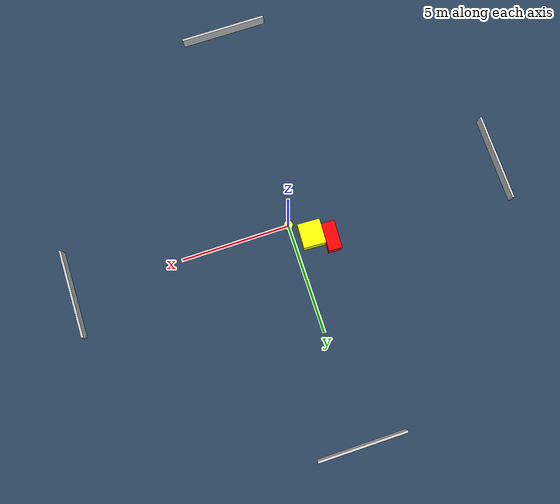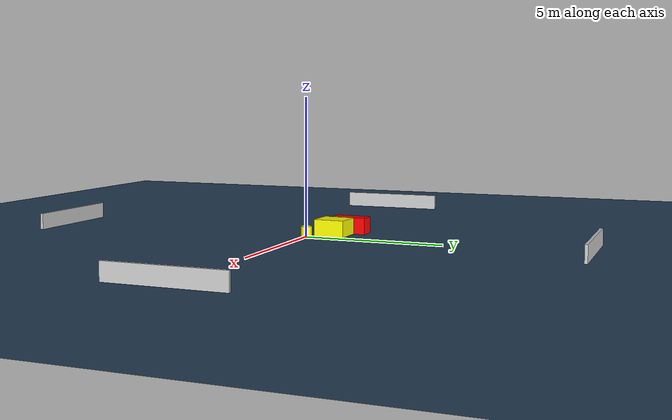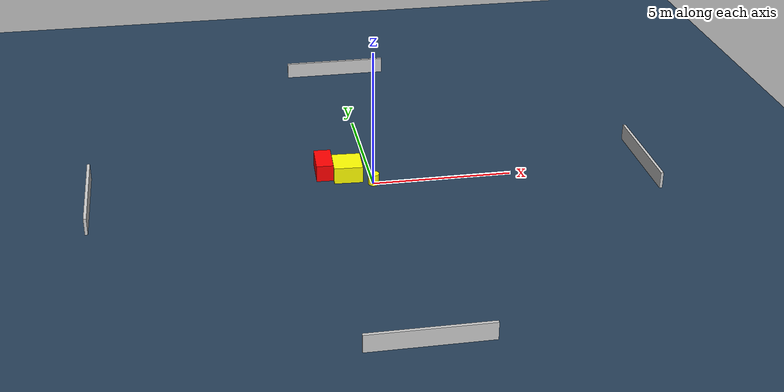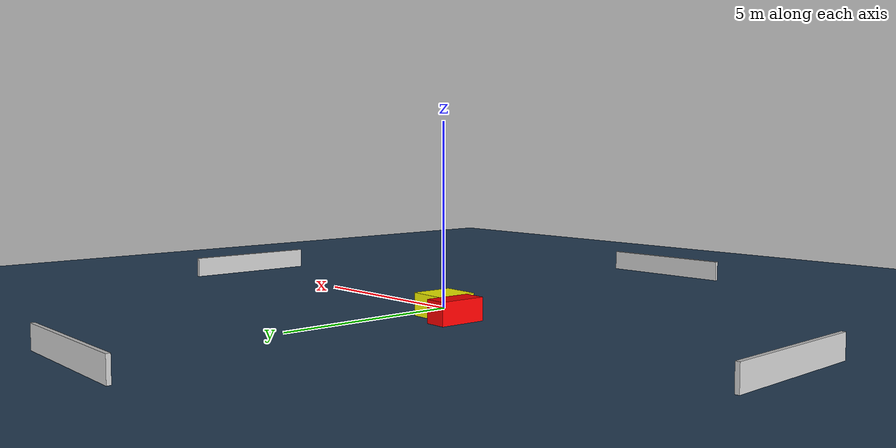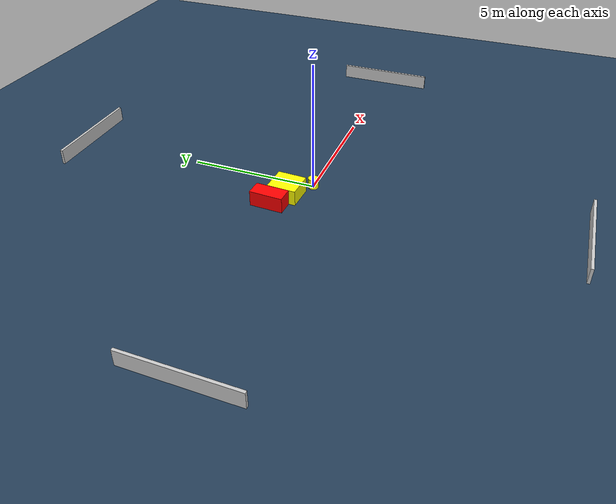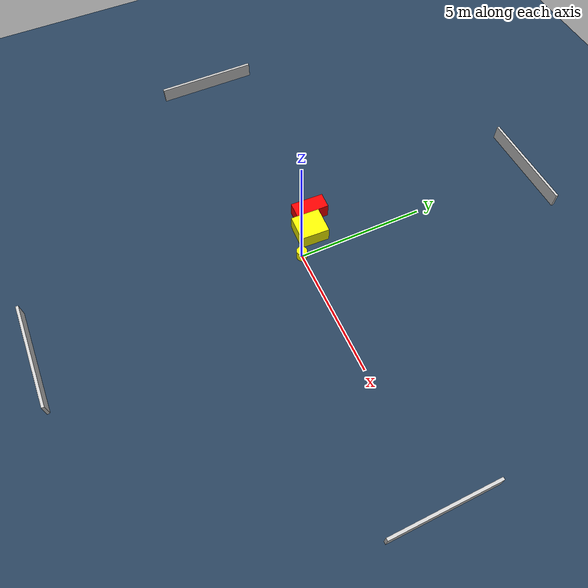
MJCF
<?xml version="1.0" ?>
<mujoco model="generated_environment">
  <option timestep="0.01" integrator="RK4" cone="elliptic"/>
  <default>
    <geom density="1"/>
  </default>
  <asset>
    <texture builtin="gradient" height="3072" name="skybox" rgb1="0.3 0.5 0.7" rgb2="0 0 0" type="skybox" width="512"/>
    <texture builtin="checker" height="300" name="groundplane" rgb1="0.2 0.3 0.4" rgb2="0.1 0.2 0.3" type="2d" width="300"/>
    <material name="groundplane" reflectance="0.2" texrepeat="5 5" texture="groundplane"/>
  </asset>
  <worldbody>
    <light dir="0 0 -1" directional="true" pos="0 0 1.5"/>
    <geom condim="3" friction="0.5 0.005 0.001" material="groundplane" name="floor" pos="0 0 0" size="0 0 0.05" type="plane"/>
    <body name="walls">
      <geom name="wall_1" condim="4" pos="-10.0 0.0 0.3" rgba="0.800000011920929 0.800000011920929 0.800000011920929 1.0" size="0.05 2.0 0.3" type="box"/>
      <geom name="wall_2" condim="4" pos="10.0 0.0 0.3" rgba="0.800000011920929 0.800000011920929 0.800000011920929 1.0" size="0.05 2.0 0.3" type="box"/>
      <geom name="wall_3" condim="4" pos="0.0 -10.0 0.3" rgba="0.800000011920929 0.800000011920929 0.800000011920929 1.0" size="2.0 0.05 0.3" type="box"/>
      <geom name="wall_4" condim="4" pos="0.0 10.0 0.3" rgba="0.800000011920929 0.800000011920929 0.800000011920929 1.0" size="2.0 0.05 0.3" type="box"/>
    </body>
    <body name="robot">
      <joint name="joint_x" type="slide" pos="0 0 0" axis="1 0 0"/>
      <joint name="joint_y" type="slide" pos="0 0 0" axis="0 1 0"/>
      <geom name="robot" type="cylinder" pos="0.0 0.0 0.2" size="0.2 0.2 0.0" mass="5.0" friction="1.0 0.005 0.0001" condim="4" rgba="1.0 1.0 0.0 1.0"/>
    </body>
    <body name="obstacle_1_movable">
      <geom name="obstacle_1_movable" condim="4" pos="-0.8445123189318755 0.7352327368660982 0.3" euler="0 0 267.4947159393185" friction="0.0 0.005 0.001" rgba="1.0 1.0 0.0 1.0" size="0.5609279126852158 0.5161347735433146 0.3" type="box" mass="0.1"/>
      <joint type="free"/>
    </body>
    <body name="obstacle_2_static">
      <geom name="obstacle_2_static" condim="4" pos="-1.6542193113745416 1.0982055276338318 0.3" euler="0 0 357.597778765279" friction="0.0 0.005 0.001" rgba="1.0 0.0 0.0 1.0" size="0.30498714289459633 0.6438401383628873 0.3" type="box"/>
    </body>
  </worldbody>
  <actuator>
    <motor name="actuator_x" joint="joint_x" gear="1" ctrlrange="-1 1"/>
    <motor name="actuator_y" joint="joint_y" gear="1" ctrlrange="-1 1"/>
  </actuator>
</mujoco>
